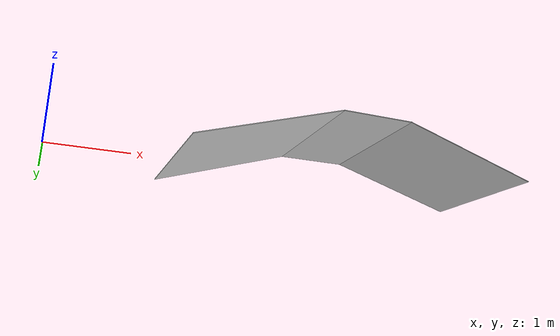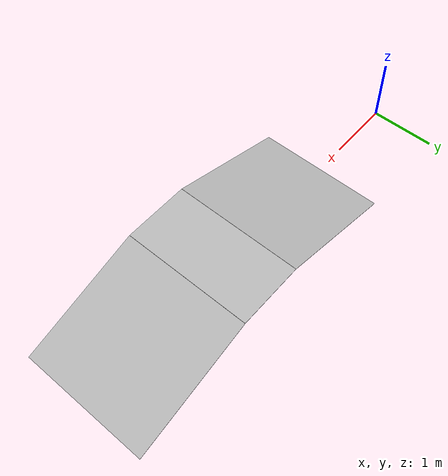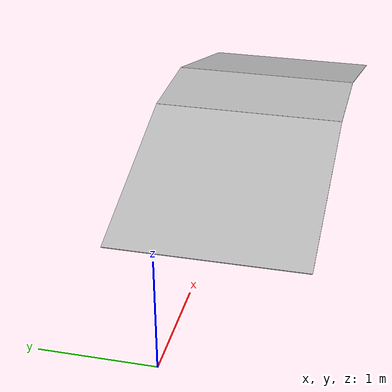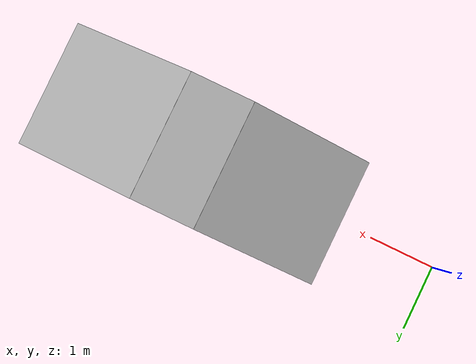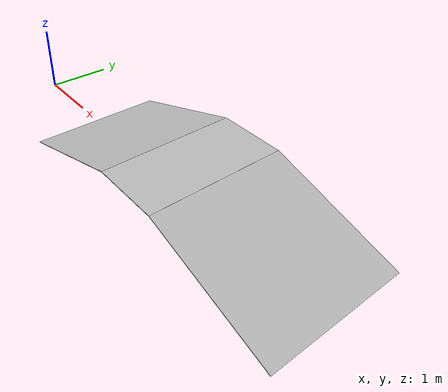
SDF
<?xml version="1.0"?>
<sdf version="1.4">

  <model name="slope">
    <static>true</static>
    <pose>0.5 0 0 0 0 0</pose>

    <link name="slope_up">
    <pose>1.95533648913 0 0.295520206661 0 -0.3 0</pose>
      <collision name="collision">
        <geometry>
          <box>
            <size>2.0 2 0.01</size>
          </box>
        </geometry>
      </collision>
      <visual name="visual">
        <geometry>
          <box>
            <size>2.0 2 0.01</size>
          </box>
        </geometry>
      </visual>
    </link>

    <link name='slope_zero'>
      <pose>3.41067297825 0 0.591040413323 0 0 0</pose>
      <collision name="collision">
        <geometry>
          <box>
            <size>1.0 2 0.01</size>
          </box>
        </geometry>
      </collision>
      <visual name="visual">
        <geometry>
          <box>
            <size>1.0 2 0.01</size>
          </box>
        </geometry>
      </visual>
    </link>

    <link name="slope_down">
    <pose>4.86600946738 0 0.295520206661 0 0.3 0</pose>
      <collision name="collision">
        <geometry>
          <box>
            <size>2.0 2 0.01</size>
          </box>
        </geometry>
      </collision>
      <visual name="visual">
        <geometry>
          <box>
            <size>2.0 2 0.01</size>
          </box>
        </geometry>
      </visual>
    </link>

  </model>
</sdf>
